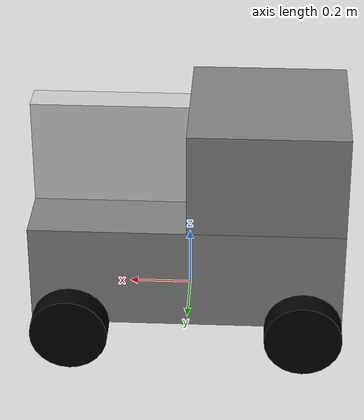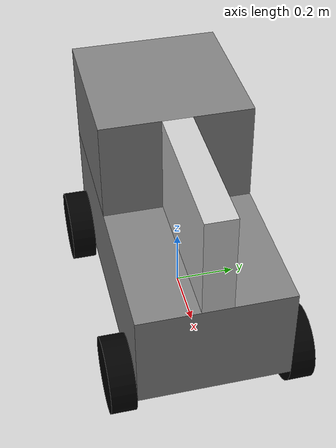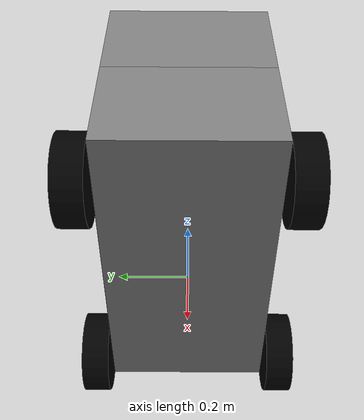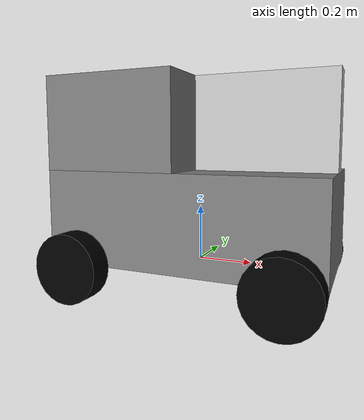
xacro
<?xml version="1.0"?>
<robot xmlns:xacro="http://www.ros.org/wiki/xacro" >

<xacro:include filename="inertial_macros.xacro"/>

<xacro:include filename="material.xacro"/>

    <link name="base_link">

    </link>

    <joint name="chassis_joint" type="fixed">
        <parent link="base_link"/>
        <child link="chassis"/>
        <origin xyz="-0.5 0.0 0.0" rpy="0.0 0.0 0.0"/>
    </joint>

    <link name="chassis">
        <visual>
            <origin xyz="0.5 0.0 0.17" rpy="0.0 0.0 0.0"/>
            <geometry>
                <box size="1 0.5 0.34"/>
            </geometry>
            <material name="gray"/>
        </visual>
        <collision>
            <origin xyz="0.15 0.0 0.075" rpy="0.0 0.0 0.0"/>
            <geometry>
                <box size="0.3 0.3 0.15"/>
            </geometry>
        </collision>
        <xacro:inertial_box mass="0.5" x="0.3" y="0.3" z="0.15">
            <origin xyz="0.15 0.0 0.075" rpy="0.0 0.0 0.0"/>
        </xacro:inertial_box>

    </link>

    <gazebo reference="chassis">
        <material>Gazebo/Wight</material>
    </gazebo>

    <joint name="2nd floor" type="fixed">
        <parent link="chassis"/>
        <child link="2nd floor"/>
        <origin xyz="0 0 0.34" rpy="0 0.0 0.0"/>

    </joint>

    <link name="2nd floor">
        <visual>
            <origin xyz="0.25 0.0 0.17" rpy="0.0 0.0 0.0"/>
            <geometry>
                <box size="0.5 0.5 0.34"/>
            </geometry>
            <material name="gray"/>
        </visual>
        <collision>
            <origin xyz="0 0.0 0.0" rpy="0.0 0.0 0.0"/>
            <geometry>
                <box size="1 0.5 0.34"/>
            </geometry>
        </collision>
        <xacro:inertial_box mass="0.5" x="0.3" y="0.3" z="0.15">
            <origin xyz="0.15 0.0 0.075" rpy="0.0 0.0 0.0"/>
        </xacro:inertial_box>

    </link>

    <gazebo reference="2nd floor">
        <material>Gazebo/White</material>
    </gazebo>

    <joint name="mechanism" type="fixed">
        <parent link="2nd floor"/>
        <child link="mechanism"/>
        <origin xyz="0.5 0 0.0" rpy="0 0.0 0.0"/>

    </joint>

    <link name="mechanism">
        <visual>
            <origin xyz="0.25 0.0 0.17" rpy="0.0 0.0 0.0"/>
            <geometry>
                <box size="0.5 0.10 0.34"/>
            </geometry>
            <material name="gray2"/>
        </visual>
        <collision>
            <origin xyz="0 0.0 0.0" rpy="0.0 0.0 0.0"/>
            <geometry>
                <box size="1 0.5 0.34"/>
            </geometry>
        </collision>
        <xacro:inertial_box mass="0.5" x="0.3" y="0.3" z="0.15">
            <origin xyz="0.15 0.0 0.075" rpy="0.0 0.0 0.0"/>
        </xacro:inertial_box>

    </link>

    <gazebo reference="mechanism">
        <material>Gazebo/GreyLight</material>
    </gazebo>

    <!-- Front left wheel joint -->

    <joint name="FrontLeft_wheel_joint" type="continuous">
        <parent link="base_link"/>
        <child link="FrontLeft_wheel_link"/>
        <origin xyz="0.375 0.29125 0.0" rpy="-${pi/2} 0.0 0.0"/>
        <axis xyz="0.0 0.0 1"/>
    </joint>

    <link name="FrontLeft_wheel_link">
        <visual>
            <geometry>
                <cylinder radius="0.125" length="0.0825"/>
            </geometry>
            <material name="black" />
        </visual>
        <collision>
            <geometry>
                <cylinder radius="0.125" length="0.165"/>
            </geometry>
        </collision>
        <xacro:inertial_cylinder mass="0.1" length="0.04" radius="0.05">
            <origin xyz="0.0 0.0 0.0" rpy="0.0 0.0 0.0"/>
        </xacro:inertial_cylinder>
    </link>

    <gazebo reference="FrontLeft_wheel_link">
        <material>Gazebo/Black</material>
        <mu1 value="0.0001"/>
        <mu2 value="0.0001"/>
    </gazebo>

<!-- Front Right wheel joint -->

    <joint name="FrontRight_wheel_joint" type="continuous">
        <parent link="base_link"/>
        <child link="FrontRight_wheel_link"/>
        <origin xyz="0.375 -0.29125 0.0" rpy="${pi/2} 0.0 0.0"/>
        <axis xyz="0.0 0.0 -1"/>
    </joint>

    <link name="FrontRight_wheel_link">
        <visual>
            <geometry>
                <cylinder radius="0.125" length="0.0825"/>
            </geometry>
            <material name="black" />
        </visual>
        <collision>
            <geometry>
                <cylinder radius="0.125" length="0.165"/>
            </geometry>
        </collision>
        <xacro:inertial_cylinder mass="0.1" length="0.04" radius="0.05">
            <origin xyz="0.0 0.0 0.0" rpy="0.0 0.0 0.0"/>
        </xacro:inertial_cylinder>
    </link>
    <gazebo reference="FrontRight_wheel_link">
        <material>Gazebo/Black</material>
        <mu1 value="0.0001"/>
        <mu2 value="0.0001"/>
    </gazebo>

    <!-- Back left wheel joint -->
    <joint name="left_wheel_joint" type="continuous">
        <parent link="chassis"/>
        <child link="BackLeft_wheel_link"/>
        <origin xyz="0.125 0.29125 0.0" rpy="-${pi/2} 0.0 0.0"/>
        <axis xyz="0.0 0.0 1"/>
    </joint>

    <link name="BackLeft_wheel_link">
        <visual>
            <geometry>
                <cylinder radius="0.125" length="0.0825"/>
            </geometry>
            <material name="black" />
        </visual>
        <collision>
            <geometry>
                <cylinder radius="0.125" length="0.165"/>
            </geometry>
        </collision>
        <xacro:inertial_cylinder mass="0.1" length="0.165" radius="0.125">
            <origin xyz="0.0 0.0 0.0" rpy="0.0 0.0 0.0"/>
        </xacro:inertial_cylinder>
    </link>

  <gazebo reference="BackLeft_wheel_link">
    <material>Gazebo/Black</material>
  </gazebo>

 <!-- back Right wheel joint -->

 <joint name="right_wheel_joint" type="continuous">
    <parent link="chassis"/>
    <child link="BackRight_wheel_link"/>
    <origin xyz="0.125 -0.29125 0.0" rpy="${pi/2} 0.0 0.0"/>
    <axis xyz="0.0 0.0 -1"/>
</joint>

<link name="BackRight_wheel_link">
    <visual>
        <geometry>
            <cylinder radius="0.125" length="0.0825"/>
        </geometry>
        <material name="black" />
    </visual>
    <collision>
        <geometry>
            <cylinder radius="0.125" length="0.165"/>
        </geometry>
    </collision>
    <xacro:inertial_cylinder mass="0.1" length="0.04" radius="0.05">
        <origin xyz="0.0 0.0 0.0" rpy="0.0 0.0 0.0"/>
    </xacro:inertial_cylinder>
</link>

  <gazebo reference="BackRight_wheel_link">
    <material>Gazebo/Black</material>
  </gazebo>

</robot>

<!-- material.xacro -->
<robot xmlns:xacro="http://www.ros.org/wiki/xacro" >

    <material name="white">
        <color rgba="1 1 1 1" />
    </material>

    <material name="pink">
    <color rgba="1 0 1 1" /> <!-- Pink color with RGBA values -->
</material>

    <material name="red">
        <color rgba="1 0 0 1" />
    </material>

    <material name="green">
        <color rgba="0 1 0 1" />
    </material>

    <material name="blue">
        <color rgba="0 0 1 1" />
    </material>

    <material name="yellow">
        <color rgba="1 1 0 1" />
    </material>

    <material name="purple">
        <color rgba="0.5 0 0.5 1" />
    </material>

    <material name="gray">
        <color rgba="0.5 0.5 0.5 1" />
    </material>

    <material name="gray2">
        <color rgba="0.8 0.8 0.8 1" />
      </material>

    <material name="black">
        <color rgba="0 0 0 1" />
    </material>
</robot>
